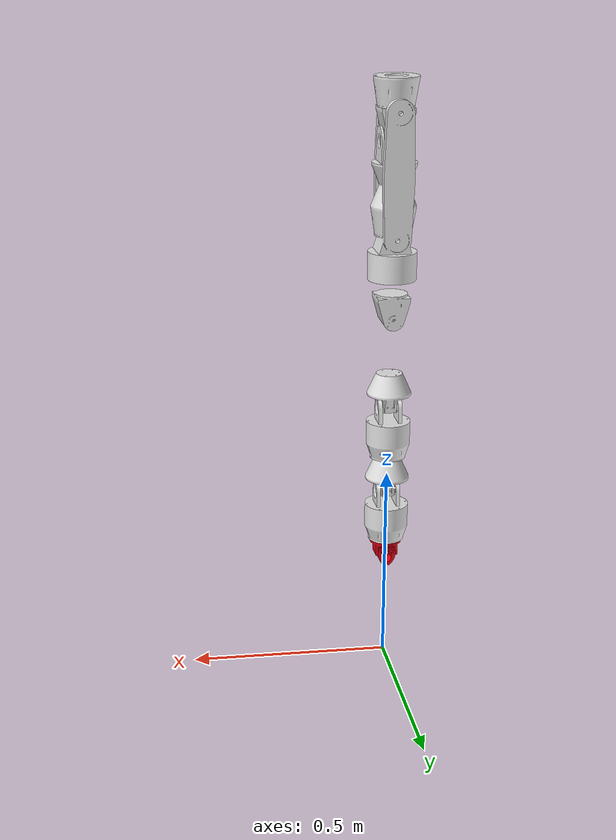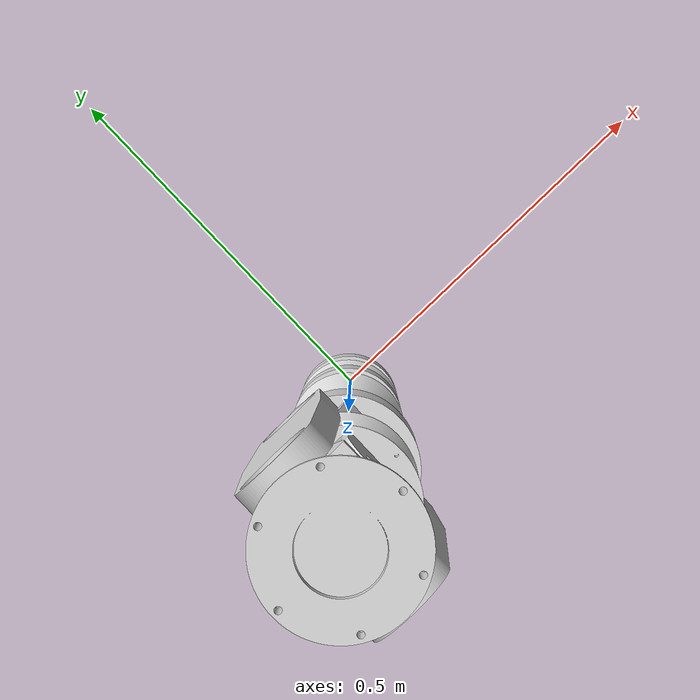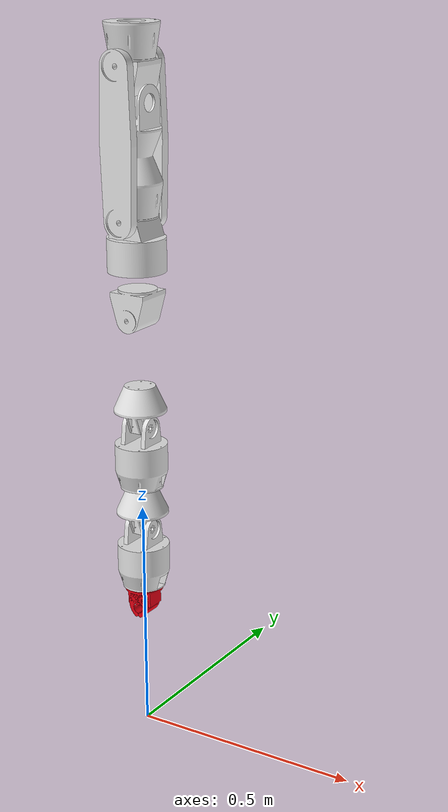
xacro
<?xml version="1.0"?>

<robot name="myrobot" xmlns:xacro="http://ros.org/wiki/xacro">
  <xacro:include filename="$(find myrobot_description)/urdf/myrobot.xacro"/>
  <xacro:include filename="$(find myrobot_description)/urdf/myrobot_hand.xacro"/>

  <!-- setting color -->
  <material name="white">
    <color rgba="0.9 0.9 0.9 1.0"/>
  </material>
  <material name="red">
    <color rgba="0.8984375 0.0 0.0703125 1"/>
  </material>

  <!-- Actuator limits: effort [N m], velocity [rad/s]. -->
  <xacro:property name="RMD_X4_P36_36_E_EFFORT_LIMIT" value="10.5"/>
  <xacro:property name="RMD_X4_P36_36_E_VELOCITY_LIMIT" value="8.69"/>
  <xacro:property name="XH540_V270_EFFORT_LIMIT" value="9.2"/>
  <xacro:property name="XH540_V270_VELOCITY_LIMIT" value="3.56"/>
  <xacro:property name="XH430_V350_EFFORT_LIMIT" value="3.3"/>
  <xacro:property name="XH430_V350_VELOCITY_LIMIT" value="3.25"/>

  <xacro:arg name="use_gazebo_simulation" default="false" />
  <xacro:arg name="load_trans1" default="false" />
  <xacro:arg name="use_effort_right_arm" default="false" />

  <xacro:property name="right_arm_interface" value="position"/>
  <xacro:if value="$(arg use_effort_right_arm)">
    <xacro:property name="right_arm_interface" value="effort"/>
  </xacro:if>

  <xacro:if value="$(arg use_gazebo_simulation)">
    <xacro:include filename="$(find myrobot_description)/urdf/myrobot_gazebo.xacro"/>

    <gazebo>
      <plugin name="hand_mimic_joint_plugin" filename="libroboticsgroup_upatras_gazebo_mimic_joint_plugin.so">
        <joint>hand_joint</joint>
        <mimicJoint>hand_mimic_joint</mimicJoint>
        <multiplier>1.0</multiplier>
        <offset>0.0</offset>
      </plugin>
    </gazebo>

    <xacro:if value="$(arg load_trans1)">
      <xacro:default_transmission joint_name="joint01" interface="${right_arm_interface}"/>
      <xacro:default_transmission joint_name="joint02" interface="${right_arm_interface}"/>
      <xacro:default_transmission joint_name="joint03" interface="${right_arm_interface}"/>
      <xacro:default_transmission joint_name="joint04" interface="${right_arm_interface}"/>
      <xacro:default_transmission joint_name="joint05" interface="${right_arm_interface}"/>
      <xacro:default_transmission joint_name="joint06" interface="${right_arm_interface}"/>
      <xacro:default_transmission joint_name="joint07" interface="${right_arm_interface}"/>
      <xacro:default_transmission joint_name="joint08" interface="${right_arm_interface}"/>
      <xacro:default_transmission joint_name="joint09" interface="${right_arm_interface}"/>
      <xacro:default_transmission joint_name="hand_joint" interface="position"/>
    </xacro:if>
  </xacro:if>

  <!-- Used for fixing robot 'base_link'  to Gazebo 'world' -->
  <link name="world"/>

	<!-- connect base and world via three axes expressing mobile platform -->
	<link name="base_link"/>

	<joint name="joint_base-to-world" type="fixed">
    <parent link="world"/>
    <child link="base_link"/>
    <origin xyz="0 0 0" rpy="0 0 0"/>
  </joint>

  <xacro:myrobot
    joint01_lower_limit="${radians(-90)}"
    joint01_upper_limit="${radians(90)}"
    joint02_lower_limit="${radians(-90)}"
    joint02_upper_limit="${radians(90)}"
    joint03_lower_limit="${radians(-90)}"
    joint03_upper_limit="${radians(90)}"
    joint04_lower_limit="${radians(-90)}"
    joint04_upper_limit="${radians(90)}"

    joint05_lower_limit="${radians(-90)}"
    joint05_upper_limit="${radians(90)}"
    joint06_lower_limit="${radians(-90)}"
    joint06_upper_limit="${radians(90)}"
    joint07_lower_limit="${radians(-90)}"
    joint07_upper_limit="${radians(90)}"
    joint08_lower_limit="${radians(-90)}"
    joint08_upper_limit="${radians(90)}"
    joint09_lower_limit="${radians(-90)}"
    joint09_upper_limit="${radians(90)}"

    joint01_effort_limit  ="${RMD_X4_P36_36_E_EFFORT_LIMIT}"
    joint01_velocity_limit="${RMD_X4_P36_36_E_VELOCITY_LIMIT}"
    joint02_effort_limit  ="${RMD_X4_P36_36_E_EFFORT_LIMIT}"
    joint02_velocity_limit="${RMD_X4_P36_36_E_VELOCITY_LIMIT}"
    joint03_effort_limit  ="${RMD_X4_P36_36_E_EFFORT_LIMIT}"
    joint03_velocity_limit="${RMD_X4_P36_36_E_VELOCITY_LIMIT}"
    joint04_effort_limit  ="${RMD_X4_P36_36_E_EFFORT_LIMIT}"
    joint04_velocity_limit="${RMD_X4_P36_36_E_VELOCITY_LIMIT}"

    joint05_effort_limit  ="${XH430_V350_EFFORT_LIMIT}"
    joint05_velocity_limit="${XH430_V350_VELOCITY_LIMIT}"
    joint06_effort_limit  ="${XH430_V350_EFFORT_LIMIT}"
    joint06_velocity_limit="${XH430_V350_VELOCITY_LIMIT}"
    joint07_effort_limit  ="${XH430_V350_EFFORT_LIMIT}"
    joint07_velocity_limit="${XH430_V350_VELOCITY_LIMIT}"
    joint08_effort_limit  ="${XH430_V350_EFFORT_LIMIT}"
    joint08_velocity_limit="${XH430_V350_VELOCITY_LIMIT}"
    joint09_effort_limit  ="${XH430_V350_EFFORT_LIMIT}"
    joint09_velocity_limit="${XH430_V350_VELOCITY_LIMIT}"
    arm_color="white">
  </xacro:myrobot>

  <xacro:myrobot_hand
    hand_joints_lower_limit="${radians(-90)}"
    hand_joints_upper_limit="${radians(0)}"
    hand_joints_effort_limit  ="${XH430_V350_EFFORT_LIMIT}"
    hand_joints_velocity_limit="${XH430_V350_VELOCITY_LIMIT}"
    hand_color="red">
  </xacro:myrobot_hand>
</robot>

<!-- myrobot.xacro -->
<robot xmlns:xacro="http://ros.org/wiki/xacro">

  <xacro:macro name="myrobot"
    params="joint01_lower_limit joint01_upper_limit
            joint02_lower_limit joint02_upper_limit
            joint03_lower_limit joint03_upper_limit
            joint04_lower_limit joint04_upper_limit
            joint05_lower_limit joint05_upper_limit
            joint06_lower_limit joint06_upper_limit
            joint07_lower_limit joint07_upper_limit
            joint08_lower_limit joint08_upper_limit
            joint09_lower_limit joint09_upper_limit
            joint01_effort_limit joint01_velocity_limit
            joint02_effort_limit joint02_velocity_limit
            joint03_effort_limit joint03_velocity_limit
            joint04_effort_limit joint04_velocity_limit
            joint05_effort_limit joint05_velocity_limit
            joint06_effort_limit joint06_velocity_limit
            joint07_effort_limit joint07_velocity_limit
            joint08_effort_limit joint08_velocity_limit
            joint09_effort_limit joint09_velocity_limit
            arm_color
            ">

    <!-- ================= Joint 00 ================= -->
    <joint name="joint00" type="fixed">
      <parent link="base_link" />
      <child link="link01" />
      <origin xyz="0 0 1.5" rpy="0 0 1.5708"/>
    </joint>

    <link name="link01">
      <visual>
        <origin rpy="3.14159 0 0" xyz="0 0 0"/>
        <geometry>
          <mesh filename="package://myrobot_description/meshes/visual/com01.stl" scale="0.001 0.001 0.001"/>
        </geometry>
        <material name="${arm_color}"/>
      </visual>
      <collision>
        <origin rpy="3.14159 0 0" xyz="0 0 0"/>
        <geometry>
          <mesh filename="package://myrobot_description/meshes/collision/com01.stl" scale="0.001 0.001 0.001"/>
        </geometry>
      </collision>
      <inertial>
        <origin xyz="0.0 0.0 0.033626" rpy="0 0 0"/>
        <mass value="0.955929"/>
        <inertia
          ixx="0.0009194"
          ixy="0.0"
          ixz="-7.677e-12"
          iyy="0.0009194"
          iyz="2.373e-13"
          izz="0.001105"/>
      </inertial>
    </link>

    <!-- ================= Joint01 ================= -->
    <joint name="joint01" type="revolute">
      <parent link="link01" />
      <child link="link02" />
      <origin xyz="0 0 -0.0715" rpy="0 0 0"/>
      <limit lower="${joint01_lower_limit}" upper="${joint01_upper_limit}" effort="${joint01_effort_limit}" velocity="${joint01_velocity_limit}"/>
      <axis xyz="0 0 1"/>
      <dynamics damping="1.0e-6" friction="0.8"/>
    </joint>

    <link name="link02">
      <visual>
        <origin rpy="3.14159 0 0" xyz="0 0 0"/>
        <geometry>
          <mesh filename="package://myrobot_description/meshes/visual/com02.stl" scale="0.001 0.001 0.001"/>
        </geometry>
        <material name="${arm_color}"/>
      </visual>
      <collision>
        <origin rpy="3.14159 0 0" xyz="0 0 0"/>
        <geometry>
          <mesh filename="package://myrobot_description/meshes/collision/com02.stl" scale="0.001 0.001 0.001"/>
        </geometry>
      </collision>
      <inertial>
        <origin xyz="-6.648e-13 0.000189 0.050235" rpy="0 0 0"/>
        <mass value="0.972294"/>
        <inertia
          ixx="0.001458"
          ixy="-8.837e-15"
          ixz="0.0"
          iyy="0.001420"
          iyz="-2.259128e-6"
          izz="0.0008793"/>
      </inertial>
    </link>

    <!-- ================= Joint02 ================= -->
    <joint name="joint02" type="revolute">
      <parent link="link02" />
      <child link="link03" />
      <origin xyz="0 0 -0.080" rpy="0 0 0"/>
      <limit lower="${joint02_lower_limit}" upper="${joint02_upper_limit}" effort="${joint02_effort_limit}" velocity="${joint02_velocity_limit}"/>
      <axis xyz="0 1 0"/>
      <dynamics damping="1.0e-6" friction="0.8"/>
    </joint>

    <link name="link03">
      <visual>
        <origin rpy="3.14159 0 0" xyz="0 0 0"/>
        <geometry>
          <mesh filename="package://myrobot_description/meshes/visual/com03.stl" scale="0.001 0.001 0.001"/>
        </geometry>
        <material name="${arm_color}"/>
      </visual>
      <collision>
        <origin rpy="3.14159 0 0" xyz="0 0 0"/>
        <geometry>
          <mesh filename="package://myrobot_description/meshes/collision/com03.stl" scale="0.001 0.001 0.001"/>
        </geometry>
      </collision>
      <inertial>
        <origin xyz="2.151e-12 -0.000093 0.13806" rpy="0 0 0"/>
        <mass value="2.085173"/>
        <inertia
          ixx="0.007892"
          ixy="-1.581e-15"
          ixz="1.0e-12"
          iyy="0.007836"
          iyz="-2.6867331e-5"
          izz="0.002416"/>
      </inertial>
    </link>

    <!-- ================= joint03 ================= -->
    <joint name="joint03" type="revolute">
      <parent link="link03"/>
      <child link="link04"/>
      <origin xyz="0 0 -0.2265" rpy="0 0 0"/>
      <limit lower="${joint03_lower_limit}" upper="${joint03_upper_limit}" effort="${joint03_effort_limit}" velocity="${joint03_velocity_limit}"/>
      <axis xyz="0 0 1"/>
      <dynamics damping="1.0e-6" friction="0.8"/>
    </joint>

    <link name="link04">
      <visual>
        <origin rpy="3.14159 0 0" xyz="0 0 0"/>
        <geometry>
          <mesh filename="package://myrobot_description/meshes/visual/com04.stl" scale="0.001 0.001 0.001"/>
        </geometry>
        <material name="${arm_color}"/>
      </visual>
      <collision>
        <origin rpy="3.14159 0 0" xyz="0 0 0"/>
        <geometry>
          <mesh filename="package://myrobot_description/meshes/collision/com04.stl" scale="0.001 0.001 0.001"/>
        </geometry>
      </collision>
      <inertial>
        <origin xyz="1.397e-12 -0.000102 0.082913" rpy="0 0 0"/>
        <mass value="1.805227"/>
        <inertia
          ixx="0.005333"
          ixy="-1.062e-14"
          ixz="0.0"
          iyy="0.005295"
          iyz="9.107951e-6"
          izz="0.001938"/>
      </inertial>
    </link>

    <!-- ================= joint04 ================= -->
    <joint name="joint04" type="revolute">
      <parent link="link04" />
      <child link="link05" />
      <origin xyz="0 0 -0.150" rpy="0 0 0"/>
      <limit lower="${joint04_lower_limit}" upper="${joint04_upper_limit}" effort="${joint04_effort_limit}" velocity="${joint04_velocity_limit}"/>
      <axis xyz="0 1 0"/>
      <dynamics damping="1.0e-6" friction="0.8"/>
    </joint>

    <link name="link05">
      <visual>
        <origin rpy="3.14159 0 0" xyz="0 0 0"/>
        <geometry>
          <mesh filename="package://myrobot_description/meshes/visual/com05.stl" scale="0.001 0.001 0.001"/>
        </geometry>
        <material name="${arm_color}"/>
      </visual>
      <collision>
        <origin rpy="3.14159 0 0" xyz="0 0 0"/>
        <geometry>
          <mesh filename="package://myrobot_description/meshes/collision/com05.stl" scale="0.001 0.001 0.001"/>
        </geometry>
      </collision>
      <inertial>
        <origin xyz="-1.552e-8 -0.000458 0.11458" rpy="0 0 0"/>
        <mass value="1.496725"/>
        <inertia
          ixx="0.004471"
          ixy="-1.141e-9"
          ixz="1.313e-9"
          iyy="0.004431"
          iyz="8.1422738e-5"
          izz="0.001787"/>
      </inertial>
    </link>

    <!-- ================= Joint05 ================= -->
    <joint name="joint05" type="revolute">
      <parent link="link05" />
      <child link="link06" />
      <origin xyz="0 0 -0.2005" rpy="0 0 0"/>
      <limit lower="${joint05_lower_limit}" upper="${joint05_upper_limit}" effort="${joint05_effort_limit}" velocity="${joint05_velocity_limit}"/>
      <axis xyz="0 0 1"/>
      <dynamics damping="1.0e-6" friction="0.8"/>
    </joint>

    <link name="link06">
      <visual>
        <origin rpy="3.14159 0 0" xyz="0 0 0"/>
        <geometry>
          <mesh filename="package://myrobot_description/meshes/visual/com06.stl" scale="0.001 0.001 0.001"/>
        </geometry>
        <material name="${arm_color}"/>
      </visual>
      <collision>
        <origin rpy="3.14159 0 0" xyz="0 0 0"/>
        <geometry>
          <mesh filename="package://myrobot_description/meshes/collision/com06.stl" scale="0.001 0.001 0.001"/>
        </geometry>
      </collision>
      <inertial>
        <origin xyz="1.95e-12 -0.000008 0.040157" rpy="0 0 0"/>
        <mass value="0.646831"/>
        <inertia
          ixx="0.0006439"
          ixy="-2.594e-16"
          ixz="7.915e-15"
          iyy="0.0006524"
          iyz="2.46697e-7"
          izz="0.00063"/>
      </inertial>
    </link>

    <!-- ================= Joint06 ================= -->
    <joint name="joint06" type="revolute">
      <parent link="link06" />
      <child link="link07" />
      <origin xyz="0 0 -0.09025" rpy="0 0 0"/>
      <limit lower="${joint06_lower_limit}" upper="${joint06_upper_limit}" effort="${joint06_effort_limit}" velocity="${joint06_velocity_limit}"/>
      <axis xyz="0 1 0"/>
      <dynamics damping="1.0e-6" friction="0.8"/>
    </joint>

    <link name="link07">
      <visual>
        <origin rpy="3.14159 0 0" xyz="0 0 0"/>
        <geometry>
          <mesh filename="package://myrobot_description/meshes/visual/com07.stl" scale="0.001 0.001 0.001"/>
        </geometry>
        <material name="${arm_color}"/>
      </visual>
      <collision>
        <origin rpy="3.14159 0 0" xyz="0 0 0"/>
        <geometry>
          <mesh filename="package://myrobot_description/meshes/collision/com07.stl" scale="0.001 0.001 0.001"/>
        </geometry>
      </collision>
      <inertial>
        <origin xyz="0.000019 0.000721 0.073717" rpy="0 0 0"/>
        <mass value="1.221822"/>
        <inertia
          ixx="0.001959"
          ixy="-1.135e-9"
          ixz="-7.53e-10"
          iyy="0.001954"
          iyz="-3.7865055e-5"
          izz="0.001725"/>
      </inertial>
    </link>

    <!-- ================= Joint07 ================= -->
    <joint name="joint07" type="revolute">
      <parent link="link07" />
      <child link="link08" />
      <origin xyz="0 0 -0.1355" rpy="0 0 0"/>
      <limit lower="${joint07_lower_limit}" upper="${joint07_upper_limit}" effort="${joint07_effort_limit}" velocity="${joint07_velocity_limit}"/>
      <axis xyz="0 0 1"/>
      <dynamics damping="1.0e-6" friction="0.8"/>
    </joint>

    <link name="link08">
      <visual>
        <origin rpy="3.14159 0 0" xyz="0 0 0"/>
        <geometry>
          <mesh filename="package://myrobot_description/meshes/visual/com08.stl" scale="0.001 0.001 0.001"/>
        </geometry>
        <material name="${arm_color}"/>
      </visual>
      <collision>
        <origin rpy="3.14159 0 0" xyz="0 0 0"/>
        <geometry>
          <mesh filename="package://myrobot_description/meshes/collision/com08.stl" scale="0.001 0.001 0.001"/>
        </geometry>
      </collision>
      <inertial>
        <origin xyz="1.95e-12 -0.000008 0.040157" rpy="0 0 0"/>
        <mass value="0.646831"/>
        <inertia
          ixx="0.0006439"
          ixy="-2.594e-16"
          ixz="7.915e-15"
          iyy="0.0006524"
          iyz="2.46697e-7"
          izz="0.00063"/>
      </inertial>
    </link>

    <!-- ================= Joint08 ================= -->
    <joint name="joint08" type="revolute">
      <parent link="link08" />
      <child link="link09" />
      <origin xyz="0 0 -0.09025" rpy="0 0 0"/>
      <limit lower="${joint08_lower_limit}" upper="${joint08_upper_limit}" effort="${joint08_effort_limit}" velocity="${joint08_velocity_limit}"/>
      <axis xyz="0 1 0"/>
      <dynamics damping="1.0e-6" friction="0.8"/>
    </joint>

    <link name="link09">
      <visual>
        <origin rpy="3.14159 0 0" xyz="0 0 0"/>
        <geometry>
          <mesh filename="package://myrobot_description/meshes/visual/com09.stl" scale="0.001 0.001 0.001"/>
        </geometry>
        <material name="${arm_color}"/>
      </visual>
      <collision>
        <origin rpy="3.14159 0 0" xyz="0 0 0"/>
        <geometry>
          <mesh filename="package://myrobot_description/meshes/collision/com09.stl" scale="0.001 0.001 0.001"/>
        </geometry>
      </collision>
      <inertial>
        <origin xyz="-0.000019 -0.000721 0.073717" rpy="0 0 0"/>
        <mass value="1.221822"/>
        <inertia
          ixx="0.001959"
          ixy="-1.135e-9"
          ixz="7.53e-10"
          iyy="0.001954"
          iyz="3.7865055e-5"
          izz="0.001725"/>
      </inertial>
    </link>

    <!-- ================= Joint09 ================= -->
    <joint name="joint09" type="revolute">
      <parent link="link09" />
      <child link="HandMount_link" />
      <origin xyz="0 0 -0.1355" rpy="0 0 0"/>
      <limit lower="${joint09_lower_limit}" upper="${joint09_upper_limit}" effort="${joint09_effort_limit}" velocity="${joint09_velocity_limit}"/>
      <axis xyz="0 0 1"/>
      <dynamics damping="1.0e-6" friction="0.8"/>
    </joint>

    <!-- ================= Gazebo 設定 ================= -->
    <xacro:macro name="gazebo_material" params="link_name">
      <gazebo reference="${link_name}">
        <material>Gazebo/White</material>
      </gazebo>
    </xacro:macro>

    <xacro:gazebo_material link_name="link01"/>
    <xacro:gazebo_material link_name="link02"/>
    <xacro:gazebo_material link_name="link03"/>
    <xacro:gazebo_material link_name="link04"/>
    <xacro:gazebo_material link_name="link05"/>
    <xacro:gazebo_material link_name="link06"/>
    <xacro:gazebo_material link_name="link07"/>
    <xacro:gazebo_material link_name="link08"/>
    <xacro:gazebo_material link_name="link09"/>

  </xacro:macro>

</robot>

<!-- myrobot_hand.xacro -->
<robot xmlns:xacro="http://ros.org/wiki/xacro">

  <xacro:macro name="myrobot_hand"
    params="hand_joints_lower_limit
            hand_joints_upper_limit
            hand_joints_effort_limit
            hand_joints_velocity_limit
            hand_color
            ">

    <link name="HandMount_link">
      <visual>
        <origin rpy="3.14159 0 1.5708" xyz="0.0 0.0 0.0"/>
        <geometry>
          <mesh filename="package://myrobot_description/meshes/visual/HandMount.stl" scale="0.001 0.001 0.001"/>
        </geometry>
        <material name="${hand_color}"/>
      </visual>
      <collision>
        <origin rpy="3.14159 0 1.5708" xyz="0.0 0.0 0.0"/>
        <geometry>
          <mesh filename="package://myrobot_description/meshes/collision/HandMount.stl" scale="0.001 0.001 0.001"/>
        </geometry>
      </collision>
      <inertial>
        <origin xyz="0.000264 -0.000049 0.023304" rpy="0 0 0"/>
        <mass value="0.205541"/>
        <inertia
          ixx="0.000095997183"
          ixy="-1.231e-7"
          ixz="1.41185e-7"
          iyy="0.0001288"
          iyz="2.4556e-8"
          izz="0.0001199"/>
      </inertial>
    </link>

    <!-- ================= Joint hand mount to HandFingerA_link ================= -->
    <joint name="hand_joint" type="revolute">
      <parent link="HandMount_link" />
      <child link="HandFingerA_link" />
      <origin xyz="0.0 -0.012 -0.02575" rpy="0 0 0"/>
      <limit
        lower="${hand_joints_lower_limit}"
        upper="${hand_joints_upper_limit}"
        effort="${hand_joints_effort_limit}"
        velocity="${hand_joints_velocity_limit}"/>
      <axis xyz="1 0 0"/>
      <dynamics damping="1.0e-6" friction="0.8"/>
    </joint>

    <link name="HandFingerA_link">
      <visual>
        <origin rpy="3.14159 0 -1.5708" xyz="0.0 0.0 0.0"/>
        <geometry>
          <mesh filename="package://myrobot_description/meshes/visual/HandFingureA.stl" scale="0.001 0.001 0.001"/>
        </geometry>
        <material name="${hand_color}"/>
      </visual>
      <collision>
        <origin rpy="3.14159 0 -1.5708" xyz="0.0 0.0 0.0"/>
        <geometry>
          <mesh filename="package://myrobot_description/meshes/collision/HandFingureA.stl" scale="0.001 0.001 0.001"/>
        </geometry>
      </collision>
      <inertial>
        <origin xyz="-0.001325 -3.967e-10 0.022033" rpy="0 0 0"/>
        <mass value="0.020568"/>
        <inertia
          ixx="0.000010584193"
          ixy="-1.041e-14"
          ixz="5.62926e-7"
          iyy="0.000004874099"
          iyz="0.0"
          izz="0.000006957021"/>
      </inertial>
    </link>

    <!-- ================= Joint hand finger B to hand fingerA ================= -->
    <joint name="hand_mimic_joint" type="revolute">
      <parent link="HandMount_link" />
      <child link="HandFingerB_link" />
      <origin xyz="0.0 0.012 -0.02575" rpy="0 0 0"/>
      <limit
        lower="${hand_joints_lower_limit}"
        upper="${hand_joints_upper_limit}"
        effort="${hand_joints_effort_limit}"
        velocity="${hand_joints_velocity_limit}"/>
      <axis xyz="-1 0 0"/>
      <mimic joint="hand_joint" multiplier="1" offset="0"/>
      <dynamics damping="1.0e-6" friction="0.8"/>
    </joint>

    <link name="HandFingerB_link">
      <visual>
        <origin rpy="3.14159 0 -1.5708" xyz="0.0 0.0 0.0"/>
        <geometry>
          <mesh filename="package://myrobot_description/meshes/visual/HandFingureB.stl" scale="0.001 0.001 0.001"/>
        </geometry>
        <material name="${hand_color}"/>
      </visual>
      <collision>
        <origin rpy="3.14159 0 -1.5708" xyz="0.0 0.0 0.0"/>
        <geometry>
          <mesh filename="package://myrobot_description/meshes/collision/HandFingureB.stl" scale="0.001 0.001 0.001"/>
        </geometry>
      </collision>
      <inertial>
        <origin xyz="0.001385 -0.000244 0.021686" rpy="0 0 0"/>
        <mass value="0.02096"/>
        <inertia
          ixx="0.000010837944"
          ixy="-7.082e-9"
          ixz="-5.33588e-7"
          iyy="0.000005007456"
          iyz="-1.10875e-7"
          izz="0.000007078359"/>
      </inertial>
    </link>

    <gazebo reference="HandMount_link">
      <material>Gazebo/Red</material>
    </gazebo>
    <gazebo reference="HandFingerA_link">
      <material>Gazebo/Red</material>
    </gazebo>
    <gazebo reference="HandFingerB_link">
      <material>Gazebo/Red</material>
    </gazebo>

  </xacro:macro>

</robot>
